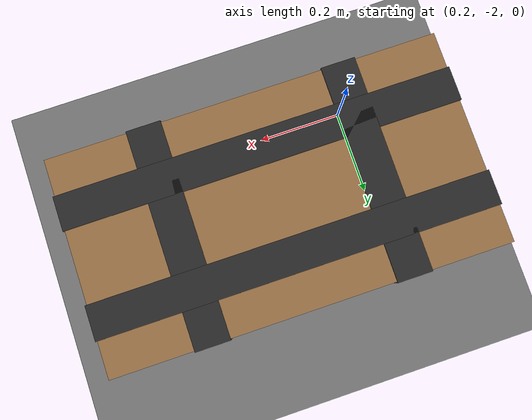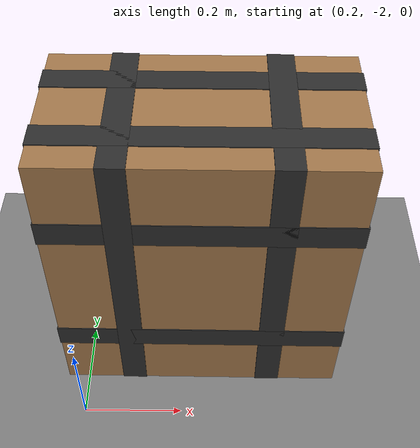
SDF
<sdf version="1.9">
 <world name="ecps295_lowbox_s18">
  <model name="ground_plane">
   <static>true</static>
   <link name="link">
    <collision name="collision">
     <geometry><plane><normal>0 0 1</normal><size>50 50</size></plane></geometry>
    </collision>
    <visual name="visual">
     <geometry><plane><normal>0 0 1</normal><size>50 50</size></plane></geometry>
     <material><ambient>0.5 0.5 0.5 1</ambient><diffuse>0.5 0.5 0.5 1</diffuse></material>
    </visual>
   </link>
  </model>
  <model name="lb5">
   <static>true</static>
   <pose>0.44 -1.76 0.303 0 0 0</pose>
   <link name="link">
    <collision name="c"><geometry><box><size>0.57 0.31 0.61</size></box></geometry></collision>
    <visual name="v">
     <geometry><box><size>0.57 0.31 0.61</size></box></geometry>
     <material><ambient>0.65 0.48 0.30 1</ambient><diffuse>0.65 0.48 0.30 1</diffuse></material>
    </visual>
    <visual name="tape_ring0">
     <pose>0.000 0.000 -0.152 0 0 0</pose>
     <geometry><box><size>0.574 0.314 0.050</size></box></geometry>
     <material><ambient>0.18 0.18 0.18 1</ambient><diffuse>0.18 0.18 0.18 1</diffuse></material>
    </visual>
    <visual name="tape_bx0">
     <pose>-0.142 0.000 0.000 0 0 0</pose>
     <geometry><box><size>0.050 0.314 0.614</size></box></geometry>
     <material><ambient>0.18 0.18 0.18 1</ambient><diffuse>0.18 0.18 0.18 1</diffuse></material>
    </visual>
    <visual name="tape_by0">
     <pose>0.000 -0.077 0.000 0 0 0</pose>
     <geometry><box><size>0.574 0.050 0.614</size></box></geometry>
     <material><ambient>0.18 0.18 0.18 1</ambient><diffuse>0.18 0.18 0.18 1</diffuse></material>
    </visual>
    <visual name="tape_ring1">
     <pose>0.000 0.000 0.152 0 0 0</pose>
     <geometry><box><size>0.574 0.314 0.050</size></box></geometry>
     <material><ambient>0.18 0.18 0.18 1</ambient><diffuse>0.18 0.18 0.18 1</diffuse></material>
    </visual>
    <visual name="tape_bx1">
     <pose>0.142 0.000 0.000 0 0 0</pose>
     <geometry><box><size>0.050 0.314 0.614</size></box></geometry>
     <material><ambient>0.18 0.18 0.18 1</ambient><diffuse>0.18 0.18 0.18 1</diffuse></material>
    </visual>
    <visual name="tape_by1">
     <pose>0.000 0.077 0.000 0 0 0</pose>
     <geometry><box><size>0.574 0.050 0.614</size></box></geometry>
     <material><ambient>0.18 0.18 0.18 1</ambient><diffuse>0.18 0.18 0.18 1</diffuse></material>
    </visual>
   </link>
  </model>
 </world>
</sdf>
